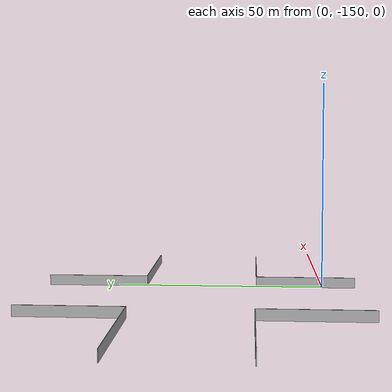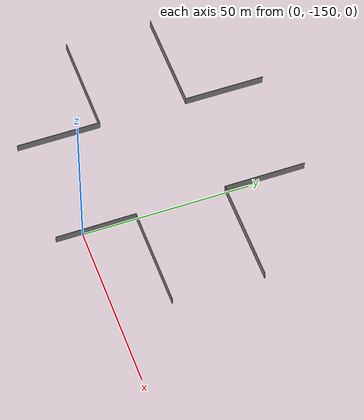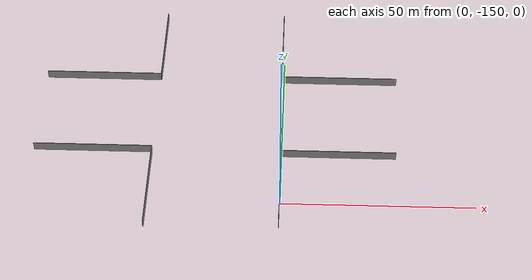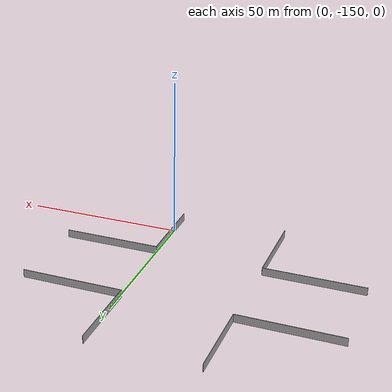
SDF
<?xml version='1.0'?>
<sdf version='1.7'>
  <model name='plus_maze'>
    <pose>-17.302 -79.287 0 0 -0 0</pose>
    <link name='Wall_11'>
      <collision name='Wall_11_Collision'>
        <geometry>
          <box>
            <size>31.5 0.15 2.5</size>
          </box>
        </geometry>
        <pose>0 0 1.25 0 -0 0</pose>
      </collision>
      <visual name='Wall_11_Visual'>
        <pose>0 0 1.25 0 -0 0</pose>
        <geometry>
          <box>
            <size>31.5 0.15 2.5</size>
          </box>
        </geometry>
        <material>
          <script>
            <uri>file://media/materials/scripts/gazebo.material</uri>
            <name>Gazebo/Grey</name>
          </script>
          <ambient>1 1 1 1</ambient>
        </material>
        <meta>
          <layer>0</layer>
        </meta>
      </visual>
      <pose>-32.373 -27.3854 0 0 -0 0</pose>
    </link>
    <link name='Wall_12'>
      <collision name='Wall_12_Collision'>
        <geometry>
          <box>
            <size>24.25 0.15 2.5</size>
          </box>
        </geometry>
        <pose>0 0 1.25 0 -0 0</pose>
      </collision>
      <visual name='Wall_12_Visual'>
        <pose>0 0 1.25 0 -0 0</pose>
        <geometry>
          <box>
            <size>24.25 0.15 2.5</size>
          </box>
        </geometry>
        <material>
          <script>
            <uri>file://media/materials/scripts/gazebo.material</uri>
            <name>Gazebo/Grey</name>
          </script>
          <ambient>1 1 1 1</ambient>
        </material>
        <meta>
          <layer>0</layer>
        </meta>
      </visual>
      <pose>-16.698 -15.3354 0 0 -0 1.5708</pose>
    </link>
    <link name='Wall_14'>
      <collision name='Wall_14_Collision'>
        <geometry>
          <box>
            <size>24.5 0.15 2.5</size>
          </box>
        </geometry>
        <pose>0 0 1.25 0 -0 0</pose>
      </collision>
      <visual name='Wall_14_Visual'>
        <pose>0 0 1.25 0 -0 0</pose>
        <geometry>
          <box>
            <size>24.5 0.15 2.5</size>
          </box>
        </geometry>
        <material>
          <script>
            <uri>file://media/materials/scripts/gazebo.material</uri>
            <name>Gazebo/Grey</name>
          </script>
          <ambient>1 1 1 1</ambient>
        </material>
        <meta>
          <layer>0</layer>
        </meta>
      </visual>
      <pose>16.698 -15.4689 0 0 -0 -1.5708</pose>
    </link>
    <link name='Wall_15'>
      <collision name='Wall_15_Collision'>
        <geometry>
          <box>
            <size>31.5 0.15 2.5</size>
          </box>
        </geometry>
        <pose>0 0 1.25 0 -0 0</pose>
      </collision>
      <visual name='Wall_15_Visual'>
        <pose>0 0 1.25 0 -0 0</pose>
        <geometry>
          <box>
            <size>31.5 0.15 2.5</size>
          </box>
        </geometry>
        <material>
          <script>
            <uri>file://media/materials/scripts/gazebo.material</uri>
            <name>Gazebo/Grey</name>
          </script>
          <ambient>1 1 1 1</ambient>
        </material>
        <meta>
          <layer>0</layer>
        </meta>
      </visual>
      <pose>32.373 -27.6439 0 0 -0 0</pose>
    </link>
    <link name='Wall_5'>
      <collision name='Wall_5_Collision'>
        <geometry>
          <box>
            <size>31.25 0.15 2.5</size>
          </box>
        </geometry>
        <pose>0 0 1.25 0 -0 0</pose>
      </collision>
      <visual name='Wall_5_Visual'>
        <pose>0 0 1.25 0 -0 0</pose>
        <geometry>
          <box>
            <size>31.25 0.15 2.5</size>
          </box>
        </geometry>
        <material>
          <script>
            <uri>file://media/materials/scripts/gazebo.material</uri>
            <name>Gazebo/Grey</name>
          </script>
          <ambient>1 1 1 1</ambient>
        </material>
        <meta>
          <layer>0</layer>
        </meta>
      </visual>
      <pose>-32.498 -54.112 0 0 -0 0</pose>
    </link>
    <link name='Wall_6'>
      <collision name='Wall_6_Collision'>
        <geometry>
          <box>
            <size>25.25 0.15 2.5</size>
          </box>
        </geometry>
        <pose>0 0 1.25 0 -0 0</pose>
      </collision>
      <visual name='Wall_6_Visual'>
        <pose>0 0 1.25 0 -0 0</pose>
        <geometry>
          <box>
            <size>25.25 0.15 2.5</size>
          </box>
        </geometry>
        <material>
          <script>
            <uri>file://media/materials/scripts/gazebo.material</uri>
            <name>Gazebo/Grey</name>
          </script>
          <ambient>1 1 1 1</ambient>
        </material>
        <meta>
          <layer>0</layer>
        </meta>
      </visual>
      <pose>-16.948 -66.662 0 0 -0 -1.5708</pose>
    </link>
    <link name='Wall_8'>
      <collision name='Wall_8_Collision'>
        <geometry>
          <box>
            <size>24 0.15 2.5</size>
          </box>
        </geometry>
        <pose>0 0 1.25 0 -0 0</pose>
      </collision>
      <visual name='Wall_8_Visual'>
        <pose>0 0 1.25 0 -0 0</pose>
        <geometry>
          <box>
            <size>24 0.15 2.5</size>
          </box>
        </geometry>
        <material>
          <script>
            <uri>file://media/materials/scripts/gazebo.material</uri>
            <name>Gazebo/Grey</name>
          </script>
          <ambient>1 1 1 1</ambient>
        </material>
        <meta>
          <layer>0</layer>
        </meta>
      </visual>
      <pose>17.0744 -66.6549 0 0 -0 1.5708</pose>
    </link>
    <link name='Wall_9'>
      <collision name='Wall_9_Collision'>
        <geometry>
          <box>
            <size>30.25 0.15 2.5</size>
          </box>
        </geometry>
        <pose>0 0 1.25 0 -0 0</pose>
      </collision>
      <visual name='Wall_9_Visual'>
        <pose>0 0 1.25 0 -0 0</pose>
        <geometry>
          <box>
            <size>30.25 0.15 2.5</size>
          </box>
        </geometry>
        <material>
          <script>
            <uri>file://media/materials/scripts/gazebo.material</uri>
            <name>Gazebo/Grey</name>
          </script>
          <ambient>1 1 1 1</ambient>
        </material>
        <meta>
          <layer>0</layer>
        </meta>
      </visual>
      <pose>32.1244 -54.7299 0 0 -0 0</pose>
    </link>
    <static>1</static>
  </model>
</sdf>
